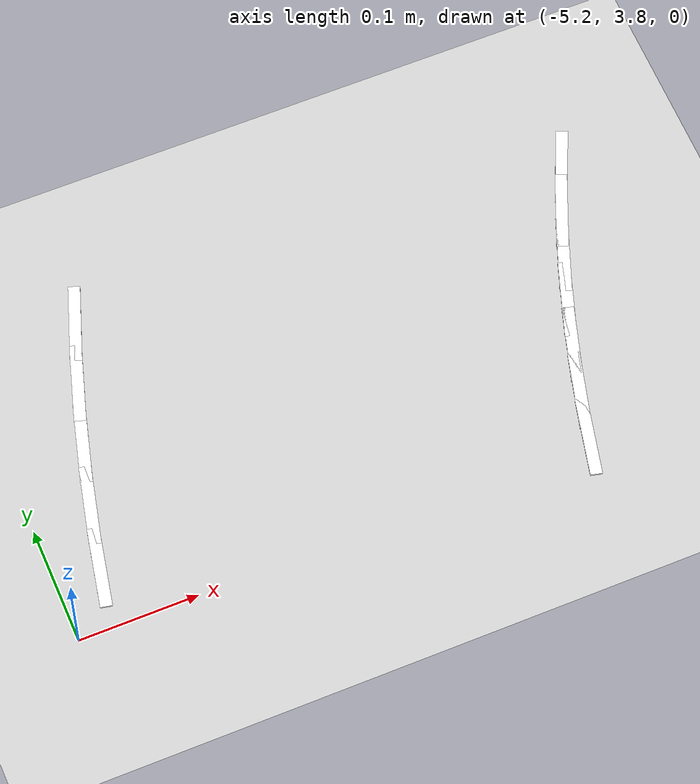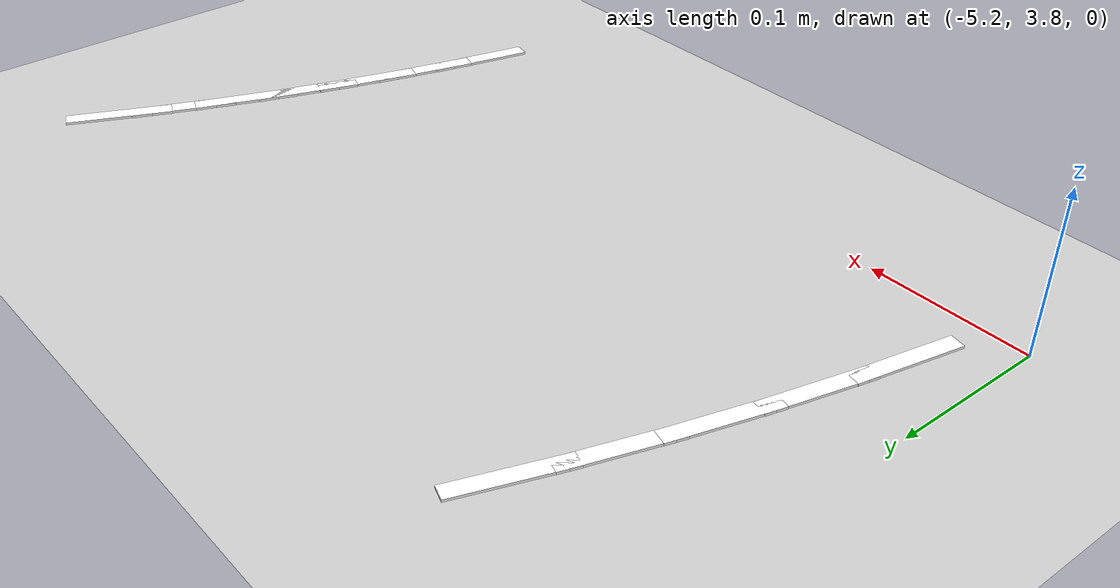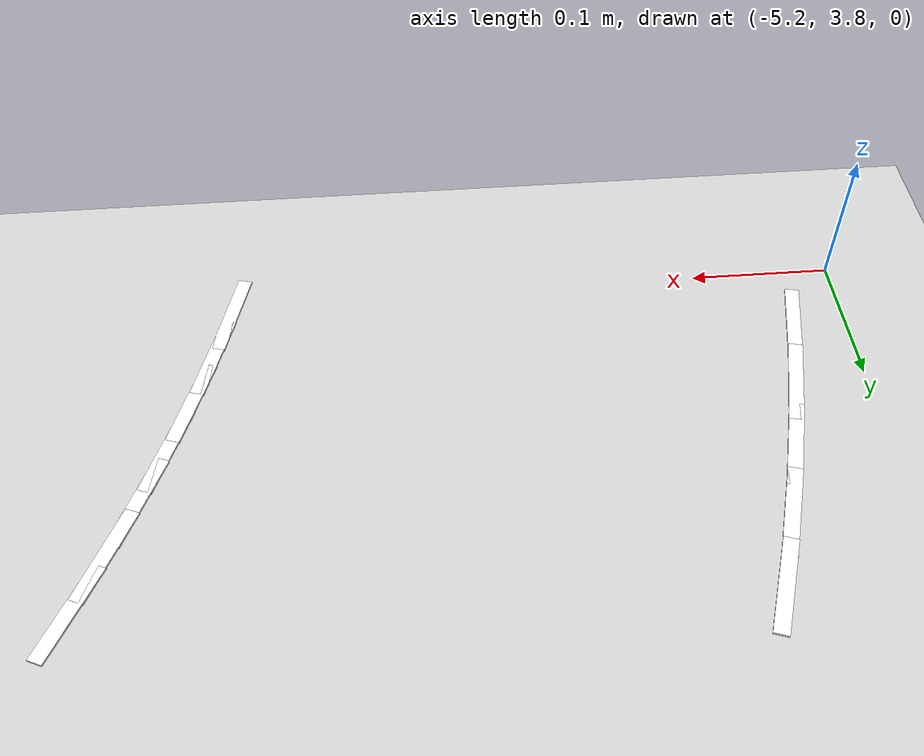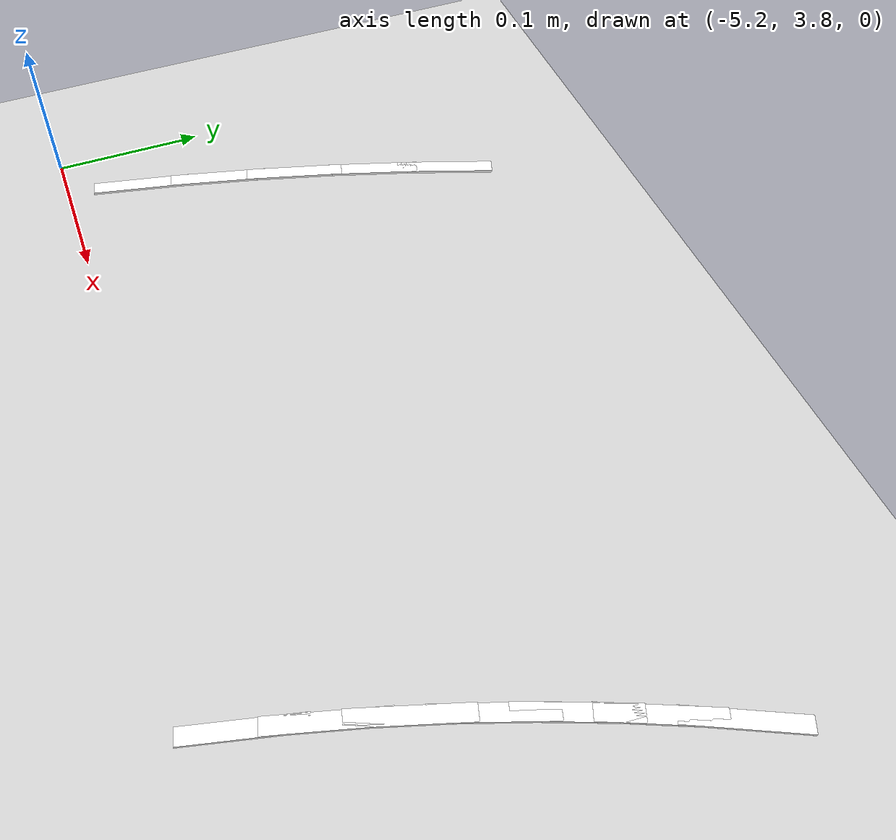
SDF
<sdf version="1.7">
 <world name="default">
  <model name="ground_plane">
   <static>1</static>
   <link name="link">
    <collision name="collision">
     <geometry><plane><normal>0 0 1</normal><size>100 100</size></plane></geometry>
     <surface>
      <contact><collide_bitmask>65535</collide_bitmask></contact>
      <friction><ode><mu>100</mu><mu2>50</mu2></ode></friction>
     </surface>
    </collision>
    <visual name="visual">
     <cast_shadows>0</cast_shadows>
     <geometry><plane><normal>0 0 1</normal><size>100 100</size></plane></geometry>
     <material>
      <script><uri>file://media/materials/scripts/gazebo.material</uri><name>Gazebo/Grey</name></script>
     </material>
    </visual>
   </link>
  </model>
  <model name="lane_line_left_285">
   <static>1</static>
   <link name="link">
    <pose>0 0 -0.004 0 -0 0</pose>
    <visual name="visual">
     <geometry><box><size>0.0681 0.01 0.01</size></box></geometry>
     <material><ambient>1 1 1 1</ambient><diffuse>1 1 1 1</diffuse></material>
    </visual>
    <collision name="collision"><geometry><box><size>0.0681 0.01 0.01</size></box></geometry></collision>
   </link>
   <pose>-4.67997 4.04512 0 0 0 -2.00357</pose>
  </model>
  <model name="lane_line_left_286">
   <static>1</static>
   <link name="link">
    <pose>0 0 -0.004 0 -0 0</pose>
    <visual name="visual">
     <geometry><box><size>0.0681 0.01 0.01</size></box></geometry>
     <material><ambient>1 1 1 1</ambient><diffuse>1 1 1 1</diffuse></material>
    </visual>
    <collision name="collision"><geometry><box><size>0.0681 0.01 0.01</size></box></geometry></collision>
   </link>
   <pose>-4.69684 4.00702 0 0 0 -1.97151</pose>
  </model>
  <model name="lane_line_left_287">
   <static>1</static>
   <link name="link">
    <pose>0 0 -0.004 0 -0 0</pose>
    <visual name="visual">
     <geometry><box><size>0.0681 0.01 0.01</size></box></geometry>
     <material><ambient>1 1 1 1</ambient><diffuse>1 1 1 1</diffuse></material>
    </visual>
    <collision name="collision"><geometry><box><size>0.0681 0.01 0.01</size></box></geometry></collision>
   </link>
   <pose>-4.71248 3.9684 0 0 0 -1.93945</pose>
  </model>
  <model name="lane_line_left_288">
   <static>1</static>
   <link name="link">
    <pose>0 0 -0.004 0 -0 0</pose>
    <visual name="visual">
     <geometry><box><size>0.0681 0.01 0.01</size></box></geometry>
     <material><ambient>1 1 1 1</ambient><diffuse>1 1 1 1</diffuse></material>
    </visual>
    <collision name="collision"><geometry><box><size>0.0681 0.01 0.01</size></box></geometry></collision>
   </link>
   <pose>-4.72687 3.9293 0 0 0 -1.9074</pose>
  </model>
  <model name="lane_line_right_288">
   <static>1</static>
   <link name="link">
    <pose>0 0 -0.004 0 -0 0</pose>
    <visual name="visual">
     <geometry><box><size>0.0681 0.01 0.01</size></box></geometry>
     <material><ambient>1 1 1 1</ambient><diffuse>1 1 1 1</diffuse></material>
    </visual>
    <collision name="collision"><geometry><box><size>0.0681 0.01 0.01</size></box></geometry></collision>
   </link>
   <pose>-5.10442 4.06141 0 0 0 -1.9074</pose>
  </model>
  <model name="lane_line_left_289">
   <static>1</static>
   <link name="link">
    <pose>0 0 -0.004 0 -0 0</pose>
    <visual name="visual">
     <geometry><box><size>0.0681 0.01 0.01</size></box></geometry>
     <material><ambient>1 1 1 1</ambient><diffuse>1 1 1 1</diffuse></material>
    </visual>
    <collision name="collision"><geometry><box><size>0.0681 0.01 0.01</size></box></geometry></collision>
   </link>
   <pose>-4.74 3.88976 0 0 0 -1.87534</pose>
  </model>
  <model name="lane_line_right_289">
   <static>1</static>
   <link name="link">
    <pose>0 0 -0.004 0 -0 0</pose>
    <visual name="visual">
     <geometry><box><size>0.0681 0.01 0.01</size></box></geometry>
     <material><ambient>1 1 1 1</ambient><diffuse>1 1 1 1</diffuse></material>
    </visual>
    <collision name="collision"><geometry><box><size>0.0681 0.01 0.01</size></box></geometry></collision>
   </link>
   <pose>-5.12159 4.0097 0 0 0 -1.87534</pose>
  </model>
  <model name="lane_line_left_290">
   <static>1</static>
   <link name="link">
    <pose>0 0 -0.004 0 -0 0</pose>
    <visual name="visual">
     <geometry><box><size>0.0681 0.01 0.01</size></box></geometry>
     <material><ambient>1 1 1 1</ambient><diffuse>1 1 1 1</diffuse></material>
    </visual>
    <collision name="collision"><geometry><box><size>0.0681 0.01 0.01</size></box></geometry></collision>
   </link>
   <pose>-4.75185 3.84981 0 0 0 -1.84328</pose>
  </model>
  <model name="lane_line_right_290">
   <static>1</static>
   <link name="link">
    <pose>0 0 -0.004 0 -0 0</pose>
    <visual name="visual">
     <geometry><box><size>0.0681 0.01 0.01</size></box></geometry>
     <material><ambient>1 1 1 1</ambient><diffuse>1 1 1 1</diffuse></material>
    </visual>
    <collision name="collision"><geometry><box><size>0.0681 0.01 0.01</size></box></geometry></collision>
   </link>
   <pose>-5.13709 3.95746 0 0 0 -1.84328</pose>
  </model>
  <model name="lane_line_left_291">
   <static>1</static>
   <link name="link">
    <pose>0 0 -0.004 0 -0 0</pose>
    <visual name="visual">
     <geometry><box><size>0.0681 0.01 0.01</size></box></geometry>
     <material><ambient>1 1 1 1</ambient><diffuse>1 1 1 1</diffuse></material>
    </visual>
    <collision name="collision"><geometry><box><size>0.0681 0.01 0.01</size></box></geometry></collision>
   </link>
   <pose>-4.76242 3.80951 0 0 0 -1.81122</pose>
  </model>
  <model name="lane_line_right_291">
   <static>1</static>
   <link name="link">
    <pose>0 0 -0.004 0 -0 0</pose>
    <visual name="visual">
     <geometry><box><size>0.0681 0.01 0.01</size></box></geometry>
     <material><ambient>1 1 1 1</ambient><diffuse>1 1 1 1</diffuse></material>
    </visual>
    <collision name="collision"><geometry><box><size>0.0681 0.01 0.01</size></box></geometry></collision>
   </link>
   <pose>-5.15091 3.90476 0 0 0 -1.81122</pose>
  </model>
  <model name="lane_line_right_292">
   <static>1</static>
   <link name="link">
    <pose>0 0 -0.004 0 -0 0</pose>
    <visual name="visual">
     <geometry><box><size>0.0681 0.01 0.01</size></box></geometry>
     <material><ambient>1 1 1 1</ambient><diffuse>1 1 1 1</diffuse></material>
    </visual>
    <collision name="collision"><geometry><box><size>0.0681 0.01 0.01</size></box></geometry></collision>
   </link>
   <pose>-5.16304 3.85163 0 0 0 -1.77917</pose>
  </model>
 </world>
</sdf>
